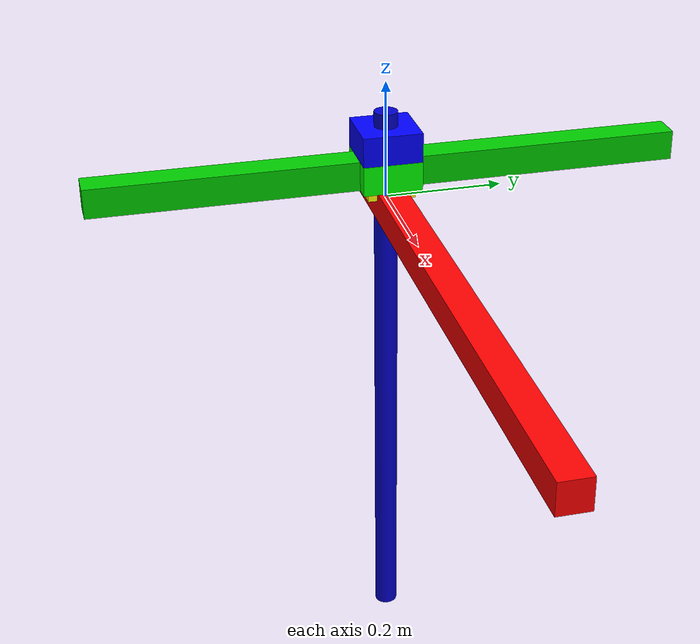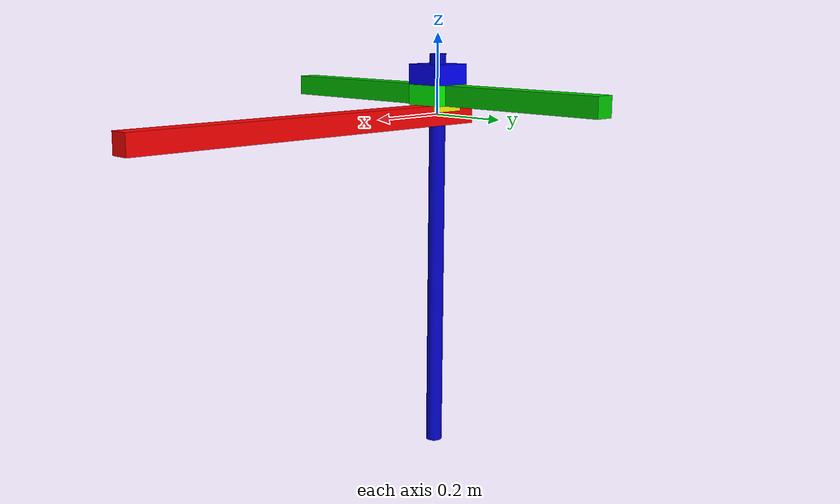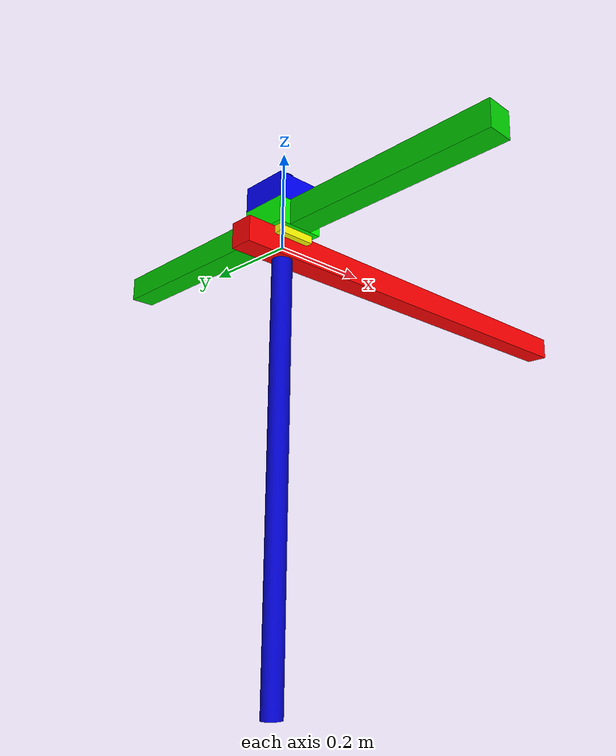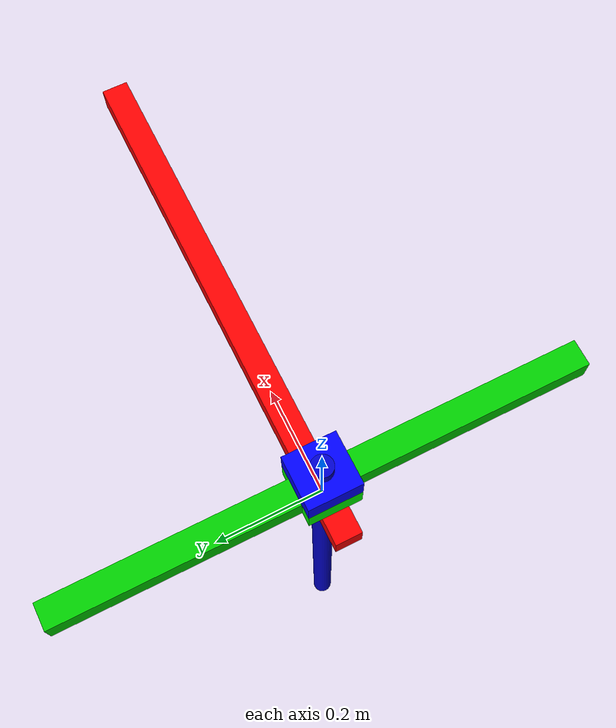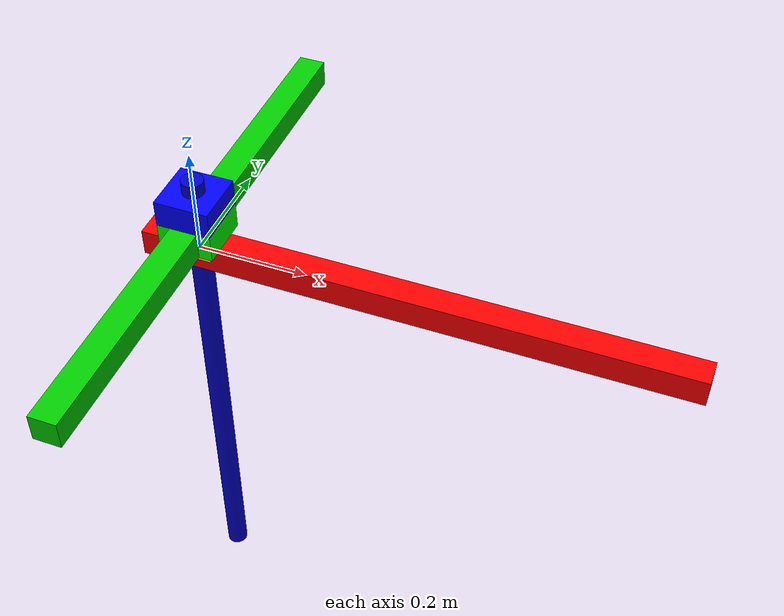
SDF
<?xml version="1.0" ?>
<sdf version="1.7">
  <model name="robot_3t">
    <static>false</static>
    <self_collide>false</self_collide>

    <joint name="world_joint" type="fixed">
      <parent>world</parent>
      <child>base_link</child>
    </joint>

    <link name="base_link">
      <pose>0 0 0 0 0 0</pose>
      <inertial><mass>10.0</mass><inertia><ixx>0.1</ixx><iyy>0.1</iyy><izz>0.1</izz></inertia></inertial>
      <visual name="x_rail">
        <pose>0.4 0 0 0 0 0</pose>
        <geometry><box><size>1.0 0.05 0.05</size></box></geometry>
        <material><ambient>1 0 0 1</ambient><diffuse>1 0 0 1</diffuse></material>
      </visual>
    </link>

    <joint name="joint_x" type="prismatic">
      <pose relative_to="base_link">0 0 0.05 0 0 0</pose>
      <parent>base_link</parent>
      <child>link_x</child>
      <axis>
        <xyz>1 0 0</xyz>
        <limit><lower>0.0</lower><upper>0.8</upper><effort>500</effort><velocity>1.0</velocity></limit>
      </axis>
    </joint>

    <link name="link_x">
      <pose relative_to="joint_x">0 0 0 0 0 0</pose>
      <inertial><mass>2.0</mass><inertia><ixx>0.05</ixx><iyy>0.05</iyy><izz>0.05</izz></inertia></inertial>
      <visual name="x_carriage">
        <geometry><box><size>0.1 0.1 0.05</size></box></geometry>
        <material><ambient>0 1 0 1</ambient><diffuse>0 1 0 1</diffuse></material>
      </visual>
      <visual name="y_rail">
        <geometry><box><size>0.05 1.0 0.05</size></box></geometry>
        <material><ambient>0 0.8 0 1</ambient><diffuse>0 0.8 0 1</diffuse></material>
      </visual>
    </link>

    <joint name="joint_y" type="prismatic">
      <pose relative_to="link_x">0 0 0.05 0 0 0</pose>
      <parent>link_x</parent>
      <child>link_y</child>
      <axis>
        <xyz>0 1 0</xyz>
        <limit><lower>-0.45</lower><upper>0.45</upper><effort>500</effort><velocity>1.0</velocity></limit>
      </axis>
    </joint>

    <link name="link_y">
      <pose relative_to="joint_y">0 0 0 0 0 0</pose>
      <inertial><mass>1.5</mass><inertia><ixx>0.03</ixx><iyy>0.03</iyy><izz>0.03</izz></inertia></inertial>
      <visual name="y_carriage">
        <geometry><box><size>0.1 0.1 0.05</size></box></geometry>
        <material><ambient>0 0 1 1</ambient><diffuse>0 0 1 1</diffuse></material>
      </visual>
      <visual name="z_rail">
        <pose>0 0 -0.45 0 0 0</pose>
        <geometry><cylinder><radius>0.02</radius><length>1.0</length></cylinder></geometry>
        <material><ambient>0 0 0.8 1</ambient><diffuse>0 0 0.8 1</diffuse></material>
      </visual>
    </link>

    <joint name="joint_z" type="prismatic">
      <pose relative_to="link_y">0 0 0 0 0 0</pose>
      <parent>link_y</parent>
      <child>link_z</child>
      <axis>
        <xyz>0 0 1</xyz>
        <limit><lower>-0.9</lower><upper>0.0</upper><effort>500</effort><velocity>1.0</velocity></limit>
      </axis>
    </joint>

    <link name="link_z">
      <pose relative_to="joint_z">0 0 -0.05 0 0 0</pose>
      <inertial><mass>0.5</mass><inertia><ixx>0.01</ixx><iyy>0.01</iyy><izz>0.01</izz></inertia></inertial>
      <visual name="end_effector">
        <geometry><box><size>0.08 0.08 0.08</size></box></geometry>
        <material><ambient>1 1 0 1</ambient><diffuse>1 1 0 1</diffuse></material>
      </visual>
      <collision name="col_ee">
        <geometry><sphere><radius>0.04</radius></sphere></geometry>
      </collision>
    </link>

    <plugin filename="gz-sim-joint-position-controller-system" name="gz::sim::systems::JointPositionController">
      <joint_name>joint_x</joint_name><joint_name>joint_y</joint_name><joint_name>joint_z</joint_name>
      <p_gain>1000.0</p_gain><i_gain>10.0</i_gain><d_gain>50.0</d_gain>
      <cmd_max>100.0</cmd_max><cmd_min>-100.0</cmd_min>
    </plugin>
  </model>
</sdf>
